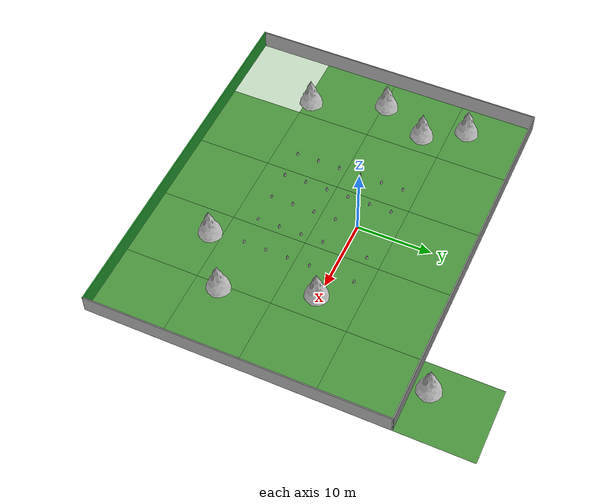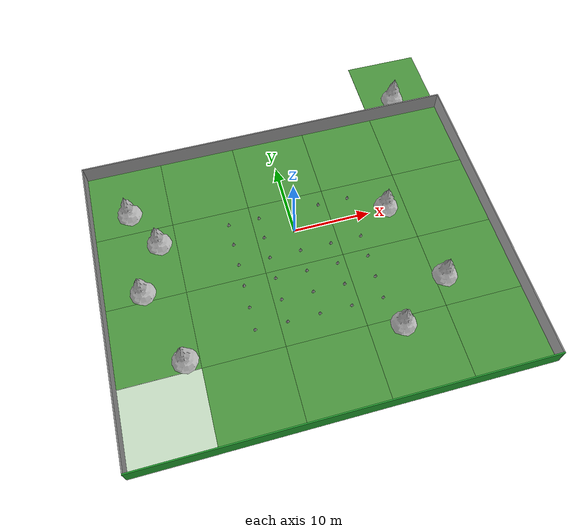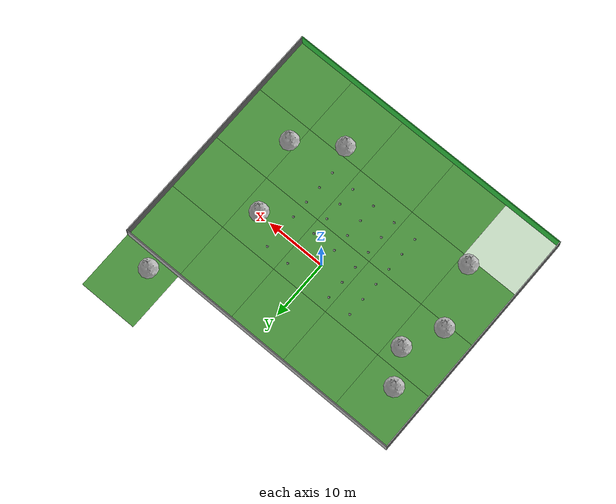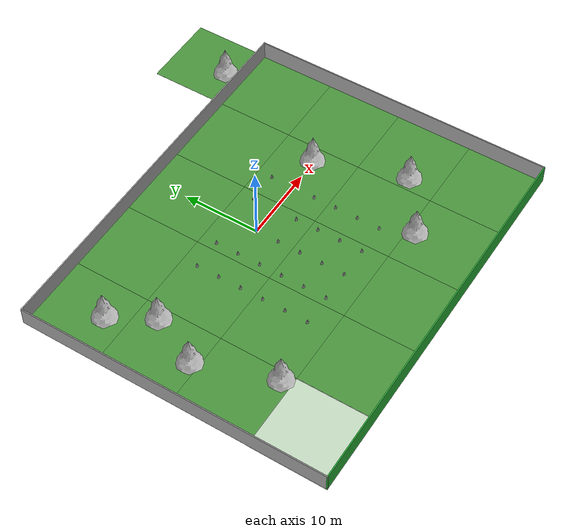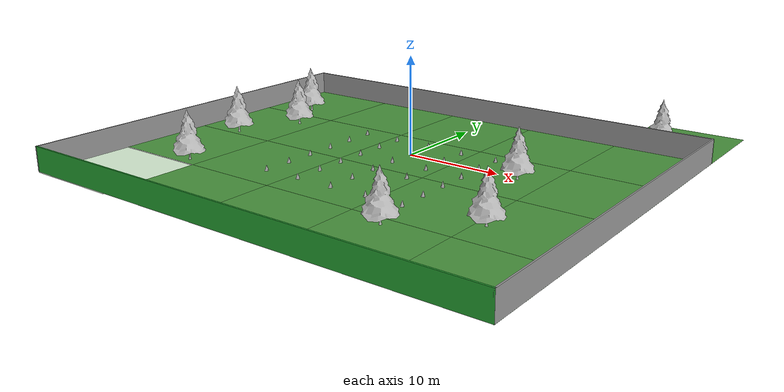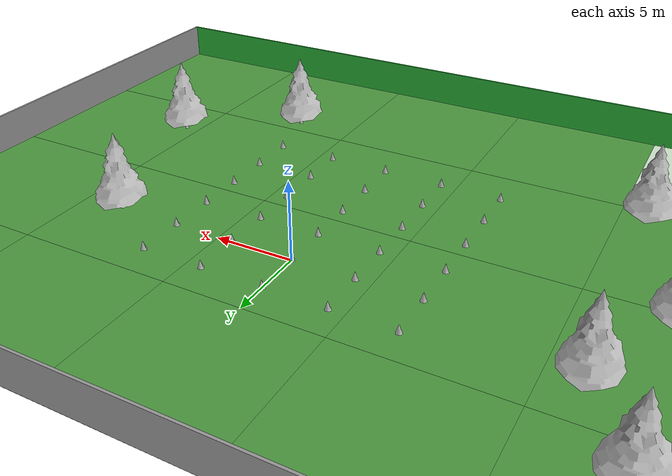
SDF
<?xml version="1.0" ?>
<sdf version="1.5">
  <world name="vrc_task_1">
    <!-- place user camera -->

    <gui>

      <camera name="user_camera">
        <pose>-30 -16 12 0.000000 0.21 0.352194</pose>
      </camera>

    </gui>
    <scene>
       <shadows>0</shadows>
      <grid>false</grid>
      <sky>
        <clouds>
          <speed>10</speed>
        </clouds>
      </sky>
    </scene>
    <physics type="ode">
      <gravity>0 0 -9.81</gravity>
      <ode>
        <solver>
          <use_dynamic_moi_rescaling>true</use_dynamic_moi_rescaling>
          <type>quick</type>
          <iters>50</iters>
	  <!-- Must be 1.0 ! Not any above number -->
          <sor>1.0</sor>
        </solver>
        <constraints>
          <cfm>0.0</cfm>
          <erp>0.2</erp>
          <contact_max_correcting_vel>100.0</contact_max_correcting_vel>
          <contact_surface_layer>0.0</contact_surface_layer>
        </constraints>
      </ode>
      <real_time_update_rate>110</real_time_update_rate>
      <max_step_size>0.0091</max_step_size>
    </physics>

    <!-- Light Source -->
    <light type="directional" name="sun">
      <cast_shadows>0</cast_shadows>
      <pose>0 0 100 0 0 0</pose>
      <diffuse>0.8 0.8 0.8 1</diffuse>
      <specular>0.9 0.9 0.9 1</specular>
      <attenuation>
        <range>1000</range>
        <constant>0.9</constant>
        <linear>0.01</linear>
        <quadratic>0.001</quadratic>
      </attenuation>
      <direction>0.2 0.2 -0.9</direction>
    </light>

    <include>
      <uri>model://grass_plane_small</uri>
    </include>

    <!--Wall-->

    <include>
      <name>wall</name>
      <uri>model://wall</uri>
      <pose> 0 -5 0   0 0 0</pose>
    </include>

	  <!-- Trees -->
    <include>
      <name>pine_tree_1</name>
      <uri>model://pine_tree</uri>
      <pose>9 -16.23 0   0 0 0</pose>
    </include>

 <include>
      <name>pine_tree_2</name>
      <uri>model://pine_tree</uri>
      <pose>-16.599 -13.973 0   0 0 0</pose>
    </include>

 <include>
      <name>pine_tree_3</name>
      <uri>model://pine_tree</uri>
      <pose>-20 -4.28 0   0 0 0</pose>
    </include>

 <include>
      <name>pine_tree_4</name>
      <uri>model://pine_tree</uri>
      <pose>-17 2 0   0 0 0</pose>
    </include>

 <include>
      <name>pine_tree_5</name>
      <uri>model://pine_tree</uri>
      <pose>-20 7.27 0   0 0 0</pose>
    </include>

 <include>
      <name>pine_tree_6</name>
      <uri>model://pine_tree</uri>
      <pose>19 17 0   0 0 0</pose>
    </include>

 <include>
      <name>pine_tree_7</name>
      <uri>model://pine_tree</uri>
      <pose>12.24 -0.15 0   0 0 0</pose>
    </include>

 <include>
      <name>pine_tree_8</name>
      <uri>model://pine_tree</uri>
      <pose>16 -11.5 0   0 0 0</pose>
    </include>

 <!--Small_Trees>-->
<include>
      <name>small_tree_1</name>
      <uri>model://pine_tree</uri>
      <pose>-8 -12 -4.5   0 0 0</pose>
    </include>

<include>
      <name>small_tree_4</name>
      <uri>model://pine_tree</uri>
      <pose>-8 -9 -4.5   0 0 0</pose>
    </include>

<include>
      <name>small_tree_7</name>
      <uri>model://pine_tree</uri>
      <pose>-8 -6 -4.5   0 0 0</pose>
    </include>

<include>
      <name>small_tree_10</name>
      <uri>model://pine_tree</uri>
      <pose>-8 -3 -4.5   0 0 0</pose>
    </include>

<include>
      <name>small_tree_13</name>
      <uri>model://pine_tree</uri>
      <pose>-8 0 -4.5   0 0 0</pose>
    </include>

<include>
      <name>small_tree_16</name>
      <uri>model://pine_tree</uri>
      <pose>-8 3 -4.5   0 0 0</pose>
    </include>

<!--small_trees_2-->>

<include>
      <name>small_tree_1a</name>
      <uri>model://pine_tree</uri>
      <pose>-4 -12 -4.5   0 0 0</pose>
    </include>

<include>
      <name>small_tree_4a</name>
      <uri>model://pine_tree</uri>
      <pose>-4 -9 -4.5   0 0 0</pose>
    </include>

<include>
      <name>small_tree_7a</name>
      <uri>model://pine_tree</uri>
      <pose>-4 -6 -4.5   0 0 0</pose>
    </include>

<include>
      <name>small_tree_10a</name>
      <uri>model://pine_tree</uri>
      <pose>-4 -3 -4.5   0 0 0</pose>
    </include>

<include>
      <name>small_tree_13a</name>
      <uri>model://pine_tree</uri>
      <pose>-4 0 -4.5   0 0 0</pose>
    </include>

<include>
      <name>small_tree_16a</name>
      <uri>model://pine_tree</uri>
      <pose>-4 3 -4.5   0 0 0</pose>
    </include>

<!--small_trees_2-->
<include>
      <name>small_tree_1b</name>
      <uri>model://pine_tree</uri>
      <pose>0 -12 -4.5   0 0 0</pose>
    </include>

<include>
      <name>small_tree_4b</name>
      <uri>model://pine_tree</uri>
      <pose>0 -9 -4.5   0 0 0</pose>
    </include>

<include>
      <name>small_tree_7b</name>
      <uri>model://pine_tree</uri>
      <pose>0 -6 -4.5   0 0 0</pose>
    </include>

<include>
      <name>small_tree_10b</name>
      <uri>model://pine_tree</uri>
      <pose>0 -3 -4.5   0 0 0</pose>
    </include>

<include>
      <name>small_tree_13b</name>
      <uri>model://pine_tree</uri>
      <pose>0 0 -4.5   0 0 0</pose>
    </include>

<include>
      <name>small_tree_16b</name>
      <uri>model://pine_tree</uri>
      <pose>0 3 -4.5   0 0 0</pose>
    </include>

<!--small_trees_3-->
<include>
      <name>small_tree_1c</name>
      <uri>model://pine_tree</uri>
      <pose>4 -12 -4.5   0 0 0</pose>
    </include>

<include>
      <name>small_tree_4c</name>
      <uri>model://pine_tree</uri>
      <pose>4 -9 -4.5   0 0 0</pose>
    </include>

<include>
      <name>small_tree_7c</name>
      <uri>model://pine_tree</uri>
      <pose>4 -6 -4.5   0 0 0</pose>
    </include>

<include>
      <name>small_tree_10c</name>
      <uri>model://pine_tree</uri>
      <pose>4 -3 -4.5   0 0 0</pose>
    </include>

<include>
      <name>small_tree_13c</name>
      <uri>model://pine_tree</uri>
      <pose>4 0 -4.5   0 0 0</pose>
    </include>

<include>
      <name>small_tree_16c</name>
      <uri>model://pine_tree</uri>
      <pose>4 3 -4.5   0 0 0</pose>
    </include>
<!--small-trees_4-->

<include>
      <name>small_tree_1d</name>
      <uri>model://pine_tree</uri>
      <pose>8 -12 -4.5   0 0 0</pose>
    </include>

<include>
      <name>small_tree_4d</name>
      <uri>model://pine_tree</uri>
      <pose>8 -9 -4.5   0 0 0</pose>
    </include>

<include>
      <name>small_tree_7d</name>
      <uri>model://pine_tree</uri>
      <pose>8 -6 -4.5   0 0 0</pose>
    </include>

<include>
      <name>small_tree_10d</name>
      <uri>model://pine_tree</uri>
      <pose>8 -3 -4.5   0 0 0</pose>
    </include>

<include>
      <name>small_tree_13d</name>
      <uri>model://pine_tree</uri>
      <pose>8 0 -4.5   0 0 0</pose>
    </include>

<include>
      <name>small_tree_16d</name>
      <uri>model://pine_tree</uri>
      <pose>8 3 -4.5   0 0 0</pose>
    </include>

 </world>
</sdf>

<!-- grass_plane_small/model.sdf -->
<sdf version='1.4'>
  <model name='grass_plan_small'>
    <static>true</static>
    <link name='link'>
      <collision name='collision'>
        <geometry>
          <plane>
            <normal>0 0 1</normal>
            <size>50 50</size>
          </plane>
        </geometry>
        <surface>
          <friction>
            <ode>
              <mu>0.5</mu>
              <mu2>.5</mu2>
            </ode>
          </friction>
        </surface>
      </collision>

      <visual name='visual_0'>
        <pose>-20 -20 0 0 0 0</pose>

        <cast_shadows>false</cast_shadows>
        <geometry>
          <plane>
            <normal>0 0 1</normal>
            <size>10 10</size>
          </plane>
        </geometry>
        <material>
          <script>
            <uri>model://grass_plane/materials/scripts</uri>
            <uri>model://grass_plane/materials/textures</uri>
            <name>vrc/grass</name>
          </script>
        </material>
      </visual>

      <visual name='visual_1'>
        <pose>-10 -20 0 0 0 0</pose>

        <cast_shadows>false</cast_shadows>
        <geometry>
          <plane>
            <normal>0 0 1</normal>
            <size>10 10</size>
          </plane>
        </geometry>
        <material>
          <script>
            <uri>model://grass_plane/materials/scripts</uri>
            <uri>model://grass_plane/materials/textures</uri>
            <name>vrc/grass</name>
          </script>
        </material>
      </visual>

      <visual name='visual_2'>
        <pose>0 -20 0 0 0 0</pose>

        <cast_shadows>false</cast_shadows>
        <geometry>
          <plane>
            <normal>0 0 1</normal>
            <size>10 10</size>
          </plane>
        </geometry>
        <material>
          <script>
            <uri>model://grass_plane/materials/scripts</uri>
            <uri>model://grass_plane/materials/textures</uri>
            <name>vrc/grass</name>
          </script>
        </material>
      </visual>

      <visual name='visual_3'>
        <pose>10 -20 0 0 0 0</pose>

        <cast_shadows>false</cast_shadows>
        <geometry>
          <plane>
            <normal>0 0 1</normal>
            <size>10 10</size>
          </plane>
        </geometry>
        <material>
          <script>
            <uri>model://grass_plane/materials/scripts</uri>
            <uri>model://grass_plane/materials/textures</uri>
            <name>vrc/grass</name>
          </script>
        </material>
      </visual>

      <visual name='visual_4'>
        <pose>20 -20 0 0 0 0</pose>

        <cast_shadows>false</cast_shadows>
        <geometry>
          <plane>
            <normal>0 0 1</normal>
            <size>10 10</size>
          </plane>
        </geometry>
        <material>
          <script>
            <uri>model://grass_plane/materials/scripts</uri>
            <uri>model://grass_plane/materials/textures</uri>
            <name>vrc/grass</name>
          </script>
        </material>
      </visual>

      <visual name='visual_6'>
        <pose>-20 -10 0 0 0 0</pose>

        <cast_shadows>false</cast_shadows>
        <geometry>
          <plane>
            <normal>0 0 1</normal>
            <size>10 10</size>
          </plane>
        </geometry>
        <material>
          <script>
            <uri>model://grass_plane/materials/scripts</uri>
            <uri>model://grass_plane/materials/textures</uri>
            <name>vrc/grass</name>
          </script>
        </material>
      </visual>

      <visual name='visual_7'>
        <pose>-10 -10 0 0 0 0</pose>

        <cast_shadows>false</cast_shadows>
        <geometry>
          <plane>
            <normal>0 0 1</normal>
            <size>10 10</size>
          </plane>
        </geometry>
        <material>
          <script>
            <uri>model://grass_plane/materials/scripts</uri>
            <uri>model://grass_plane/materials/textures</uri>
            <name>vrc/grass</name>
          </script>
        </material>
      </visual>

      <visual name='visual_8'>
        <pose>0 -10 0 0 0 0</pose>

        <cast_shadows>false</cast_shadows>
        <geometry>
          <plane>
            <normal>0 0 1</normal>
            <size>10 10</size>
          </plane>
        </geometry>
        <material>
          <script>
            <uri>model://grass_plane/materials/scripts</uri>
            <uri>model://grass_plane/materials/textures</uri>
            <name>vrc/grass</name>
          </script>
        </material>
      </visual>

      <visual name='visual_9'>
        <pose>10 -10 0 0 0 0</pose>

        <cast_shadows>false</cast_shadows>
        <geometry>
          <plane>
            <normal>0 0 1</normal>
            <size>10 10</size>
          </plane>
        </geometry>
        <material>
          <script>
            <uri>model://grass_plane/materials/scripts</uri>
            <uri>model://grass_plane/materials/textures</uri>
            <name>vrc/grass</name>
          </script>
        </material>
      </visual>

      <visual name='visual_10'>
        <pose>20 -10 0 0 0 0</pose>

        <cast_shadows>false</cast_shadows>
        <geometry>
          <plane>
            <normal>0 0 1</normal>
            <size>10 10</size>
          </plane>
        </geometry>
        <material>
          <script>
            <uri>model://grass_plane/materials/scripts</uri>
            <uri>model://grass_plane/materials/textures</uri>
            <name>vrc/grass</name>
          </script>
        </material>
      </visual>

      <visual name='visual_13'>
        <pose>-20 0 0 0 0 0</pose>

        <cast_shadows>false</cast_shadows>
        <geometry>
          <plane>
            <normal>0 0 1</normal>
            <size>10 10</size>
          </plane>
        </geometry>
        <material>
          <script>
            <uri>model://grass_plane/materials/scripts</uri>
            <uri>model://grass_plane/materials/textures</uri>
            <name>vrc/grass</name>
          </script>
        </material>
      </visual>

      <visual name='visual_14'>
        <pose>-10 0 0 0 0 0</pose>

        <cast_shadows>false</cast_shadows>
        <geometry>
          <plane>
            <normal>0 0 1</normal>
            <size>10 10</size>
          </plane>
        </geometry>
        <material>
          <script>
            <uri>model://grass_plane/materials/scripts</uri>
            <uri>model://grass_plane/materials/textures</uri>
            <name>vrc/grass</name>
          </script>
        </material>
      </visual>

      <visual name='visual_15'>
        <pose>0 0 0 0 0 0</pose>

        <cast_shadows>false</cast_shadows>
        <geometry>
          <plane>
            <normal>0 0 1</normal>
            <size>10 10</size>
          </plane>
        </geometry>
        <material>
          <script>
            <uri>model://grass_plane/materials/scripts</uri>
            <uri>model://grass_plane/materials/textures</uri>
            <name>vrc/grass</name>
          </script>
        </material>
      </visual>

      <visual name='visual_16'>
        <pose>10 0 0 0 0 0</pose>

        <cast_shadows>false</cast_shadows>
        <geometry>
          <plane>
            <normal>0 0 1</normal>
            <size>10 10</size>
          </plane>
        </geometry>
        <material>
          <script>
            <uri>model://grass_plane/materials/scripts</uri>
            <uri>model://grass_plane/materials/textures</uri>
            <name>vrc/grass</name>
          </script>
        </material>
      </visual>

      <visual name='visual_17'>
        <pose>20 0 0 0 0 0</pose>

        <cast_shadows>false</cast_shadows>
        <geometry>
          <plane>
            <normal>0 0 1</normal>
            <size>10 10</size>
          </plane>
        </geometry>
        <material>
          <script>
            <uri>model://grass_plane/materials/scripts</uri>
            <uri>model://grass_plane/materials/textures</uri>
            <name>vrc/grass</name>
          </script>
        </material>
      </visual>

      <visual name='visual_22'>
        <pose>-20 10 0 0 0 0</pose>

        <cast_shadows>false</cast_shadows>
        <geometry>
          <plane>
            <normal>0 0 1</normal>
            <size>10 10</size>
          </plane>
        </geometry>
        <material>
          <script>
            <uri>model://grass_plane/materials/scripts</uri>
            <uri>model://grass_plane/materials/textures</uri>
            <name>vrc/grass</name>
          </script>
        </material>
      </visual>

      <visual name='visual_23'>
        <pose>-10 10 0 0 0 0</pose>

        <cast_shadows>false</cast_shadows>
        <geometry>
          <plane>
            <normal>0 0 1</normal>
            <size>10 10</size>
          </plane>
        </geometry>
        <material>
          <script>
            <uri>model://grass_plane/materials/scripts</uri>
            <uri>model://grass_plane/materials/textures</uri>
            <name>vrc/grass</name>
          </script>
        </material>
      </visual>

      <visual name='visual_24'>
        <pose>0 10 0 0 0 0</pose>

        <cast_shadows>false</cast_shadows>
        <geometry>
          <plane>
            <normal>0 0 1</normal>
            <size>10 10</size>
          </plane>
        </geometry>
        <material>
          <script>
            <uri>model://grass_plane/materials/scripts</uri>
            <uri>model://grass_plane/materials/textures</uri>
            <name>vrc/grass</name>
          </script>
        </material>
      </visual>

      <visual name='visual_25'>
        <pose>10 10 0 0 0 0</pose>

        <cast_shadows>false</cast_shadows>
        <geometry>
          <plane>
            <normal>0 0 1</normal>
            <size>10 10</size>
          </plane>
        </geometry>
        <material>
          <script>
            <uri>model://grass_plane/materials/scripts</uri>
            <uri>model://grass_plane/materials/textures</uri>
            <name>vrc/grass</name>
          </script>
        </material>
      </visual>

      <visual name='visual_26'>
        <pose>20 10 0 0 0 0</pose>

        <cast_shadows>false</cast_shadows>
        <geometry>
          <plane>
            <normal>0 0 1</normal>
            <size>10 10</size>
          </plane>
        </geometry>
        <material>
          <script>
            <uri>model://grass_plane/materials/scripts</uri>
            <uri>model://grass_plane/materials/textures</uri>
            <name>vrc/grass</name>
          </script>
        </material>
      </visual>

      <visual name='visual_32'>
        <pose>20 20 0 0 0 0</pose>

        <cast_shadows>false</cast_shadows>
        <geometry>
          <plane>
            <normal>0 0 1</normal>
            <size>10 10</size>
          </plane>
        </geometry>
        <material>
          <script>
            <uri>model://grass_plane/materials/scripts</uri>
            <uri>model://grass_plane/materials/textures</uri>
            <name>vrc/grass</name>
          </script>
        </material>
      </visual>
    </link>
  </model>
</sdf>

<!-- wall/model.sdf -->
<sdf version='1.6'>
  <model name='wall'>
    <link name='Wall_2'>
      <pose frame=''>-24.925 0 0 0 -0 1.5708</pose>
      <self_collide>0</self_collide>
      <kinematic>0</kinematic>
      <visual name='Wall_2_Visual'>
        <pose frame=''>0 0 1.25 0 -0 0</pose>
        <geometry>
          <box>
            <size>40 0.15 2.5</size>
          </box>
        </geometry>
        <material>
          <script>
            <uri>file://media/materials/scripts/gazebo.material</uri>
            <name>Gazebo/Grey</name>
          </script>
          <ambient>1 1 1 1</ambient>
          <diffuse>0.7 0.7 0.7 1</diffuse>
          <specular>0.01 0.01 0.01 1</specular>
          <emissive>0 0 0 1</emissive>
        </material>
        <meta>
          <layer>0</layer>
        </meta>
        <transparency>0</transparency>
        <cast_shadows>1</cast_shadows>
      </visual>
      <collision name='Wall_2_Collision'>
        <laser_retro>0</laser_retro>
        <max_contacts>10</max_contacts>
        <pose frame=''>0 0 1.25 0 -0 0</pose>
        <geometry>
          <box>
            <size>40 0.15 2.5</size>
          </box>
        </geometry>
        <surface>
          <friction>
            <ode>
              <mu>1</mu>
              <mu2>1</mu2>
              <fdir1>0 0 0</fdir1>
              <slip1>0</slip1>
              <slip2>0</slip2>
            </ode>
            <torsional>
              <coefficient>1</coefficient>
              <patch_radius>0</patch_radius>
              <surface_radius>0</surface_radius>
              <use_patch_radius>1</use_patch_radius>
              <ode>
                <slip>0</slip>
              </ode>
            </torsional>
          </friction>
          <bounce>
            <restitution_coefficient>0</restitution_coefficient>
            <threshold>1e+06</threshold>
          </bounce>
          <contact>
            <collide_without_contact>0</collide_without_contact>
            <collide_without_contact_bitmask>1</collide_without_contact_bitmask>
            <collide_bitmask>1</collide_bitmask>
            <ode>
              <soft_cfm>0</soft_cfm>
              <soft_erp>0.2</soft_erp>
              <kp>1e+13</kp>
              <kd>1</kd>
              <max_vel>0.01</max_vel>
              <min_depth>0</min_depth>
            </ode>
            <bullet>
              <split_impulse>1</split_impulse>
              <split_impulse_penetration_threshold>-0.01</split_impulse_penetration_threshold>
              <soft_cfm>0</soft_cfm>
              <soft_erp>0.2</soft_erp>
              <kp>1e+13</kp>
              <kd>1</kd>
            </bullet>
          </contact>
        </surface>
      </collision>
    </link>
    <link name='Wall_4'>
      <pose frame=''>-1e-06 -19.925 0 0 -0 0</pose>
      <self_collide>0</self_collide>
      <kinematic>0</kinematic>
      <gravity>1</gravity>
      <inertial>
        <mass>1</mass>
        <pose frame=''>0 0 0 0 -0 0</pose>
        <inertia>
          <ixx>1</ixx>
          <ixy>0</ixy>
          <ixz>0</ixz>
          <iyy>1</iyy>
          <iyz>0</iyz>
          <izz>1</izz>
        </inertia>
      </inertial>
      <visual name='Wall_4_Visual'>
        <pose frame=''>0 0 1.25 0 -0 0</pose>
        <geometry>
          <box>
            <size>50 0.15 2.5</size>
          </box>
        </geometry>
        <material>
          <script>
            <uri>file://media/materials/scripts/gazebo.material</uri>
            <name>Gazebo/Green</name>
          </script>
          <ambient>1 1 1 1</ambient>
          <diffuse>0.7 0.7 0.7 1</diffuse>
          <specular>0.01 0.01 0.01 1</specular>
          <emissive>0 0 0 1</emissive>
          <shader type='vertex'>
            <normal_map>__default__</normal_map>
          </shader>
        </material>
        <meta>
          <layer>0</layer>
        </meta>
        <transparency>0</transparency>
        <cast_shadows>1</cast_shadows>
      </visual>
      <collision name='Wall_4_Collision'>
        <laser_retro>0</laser_retro>
        <max_contacts>10</max_contacts>
        <pose frame=''>0 0 1.25 0 -0 0</pose>
        <geometry>
          <box>
            <size>50 0.15 2.5</size>
          </box>
        </geometry>
        <surface>
          <friction>
            <ode>
              <mu>1</mu>
              <mu2>1</mu2>
              <fdir1>0 0 0</fdir1>
              <slip1>0</slip1>
              <slip2>0</slip2>
            </ode>
            <torsional>
              <coefficient>1</coefficient>
              <patch_radius>0</patch_radius>
              <surface_radius>0</surface_radius>
              <use_patch_radius>1</use_patch_radius>
              <ode>
                <slip>0</slip>
              </ode>
            </torsional>
          </friction>
          <bounce>
            <restitution_coefficient>0</restitution_coefficient>
            <threshold>1e+06</threshold>
          </bounce>
          <contact>
            <collide_without_contact>0</collide_without_contact>
            <collide_without_contact_bitmask>1</collide_without_contact_bitmask>
            <collide_bitmask>1</collide_bitmask>
            <ode>
              <soft_cfm>0</soft_cfm>
              <soft_erp>0.2</soft_erp>
              <kp>1e+13</kp>
              <kd>1</kd>
              <max_vel>0.01</max_vel>
              <min_depth>0</min_depth>
            </ode>
            <bullet>
              <split_impulse>1</split_impulse>
              <split_impulse_penetration_threshold>-0.01</split_impulse_penetration_threshold>
              <soft_cfm>0</soft_cfm>
              <soft_erp>0.2</soft_erp>
              <kp>1e+13</kp>
              <kd>1</kd>
            </bullet>
          </contact>
        </surface>
      </collision>
    </link>
    <link name='Wall_5'>
      <pose frame=''>24.925 0 0 0 -0 1.5708</pose>
      <self_collide>0</self_collide>
      <kinematic>0</kinematic>
      <visual name='Wall_5_Visual'>
        <pose frame=''>0 0 1.25 0 -0 0</pose>
        <geometry>
          <box>
            <size>40 0.15 2.5</size>
          </box>
        </geometry>
        <material>
          <script>
            <uri>file://media/materials/scripts/gazebo.material</uri>
            <name>Gazebo/Grey</name>
          </script>
          <ambient>1 1 1 1</ambient>
          <diffuse>0.7 0.7 0.7 1</diffuse>
          <specular>0.01 0.01 0.01 1</specular>
          <emissive>0 0 0 1</emissive>
        </material>
        <meta>
          <layer>0</layer>
        </meta>
        <transparency>0</transparency>
        <cast_shadows>1</cast_shadows>
      </visual>
      <collision name='Wall_5_Collision'>
        <laser_retro>0</laser_retro>
        <max_contacts>10</max_contacts>
        <pose frame=''>0 0 1.25 0 -0 0</pose>
        <geometry>
          <box>
            <size>40 0.15 2.5</size>
          </box>
        </geometry>
        <surface>
          <friction>
            <ode>
              <mu>1</mu>
              <mu2>1</mu2>
              <fdir1>0 0 0</fdir1>
              <slip1>0</slip1>
              <slip2>0</slip2>
            </ode>
            <torsional>
              <coefficient>1</coefficient>
              <patch_radius>0</patch_radius>
              <surface_radius>0</surface_radius>
              <use_patch_radius>1</use_patch_radius>
              <ode>
                <slip>0</slip>
              </ode>
            </torsional>
          </friction>
          <bounce>
            <restitution_coefficient>0</restitution_coefficient>
            <threshold>1e+06</threshold>
          </bounce>
          <contact>
            <collide_without_contact>0</collide_without_contact>
            <collide_without_contact_bitmask>1</collide_without_contact_bitmask>
            <collide_bitmask>1</collide_bitmask>
            <ode>
              <soft_cfm>0</soft_cfm>
              <soft_erp>0.2</soft_erp>
              <kp>1e+13</kp>
              <kd>1</kd>
              <max_vel>0.01</max_vel>
              <min_depth>0</min_depth>
            </ode>
            <bullet>
              <split_impulse>1</split_impulse>
              <split_impulse_penetration_threshold>-0.01</split_impulse_penetration_threshold>
              <soft_cfm>0</soft_cfm>
              <soft_erp>0.2</soft_erp>
              <kp>1e+13</kp>
              <kd>1</kd>
            </bullet>
          </contact>
        </surface>
      </collision>
    </link>
    <link name='Wall_7'>
      <pose frame=''>-1e-06 19.925 0 0 -0 3.14159</pose>
      <self_collide>0</self_collide>
      <kinematic>0</kinematic>
      <visual name='Wall_7_Visual'>
        <pose frame=''>0 0 1.25 0 -0 0</pose>
        <geometry>
          <box>
            <size>50 0.15 2.5</size>
          </box>
        </geometry>
        <material>
          <script>
            <uri>file://media/materials/scripts/gazebo.material</uri>
            <name>Gazebo/Grey</name>
          </script>
          <ambient>1 1 1 1</ambient>
          <diffuse>0.7 0.7 0.7 1</diffuse>
          <specular>0.01 0.01 0.01 1</specular>
          <emissive>0 0 0 1</emissive>
        </material>
        <meta>
          <layer>0</layer>
        </meta>
        <transparency>0</transparency>
        <cast_shadows>1</cast_shadows>
      </visual>
      <collision name='Wall_7_Collision'>
        <laser_retro>0</laser_retro>
        <max_contacts>10</max_contacts>
        <pose frame=''>0 0 1.25 0 -0 0</pose>
        <geometry>
          <box>
            <size>50 0.15 2.5</size>
          </box>
        </geometry>
        <surface>
          <friction>
            <ode>
              <mu>1</mu>
              <mu2>1</mu2>
              <fdir1>0 0 0</fdir1>
              <slip1>0</slip1>
              <slip2>0</slip2>
            </ode>
            <torsional>
              <coefficient>1</coefficient>
              <patch_radius>0</patch_radius>
              <surface_radius>0</surface_radius>
              <use_patch_radius>1</use_patch_radius>
              <ode>
                <slip>0</slip>
              </ode>
            </torsional>
          </friction>
          <bounce>
            <restitution_coefficient>0</restitution_coefficient>
            <threshold>1e+06</threshold>
          </bounce>
          <contact>
            <collide_without_contact>0</collide_without_contact>
            <collide_without_contact_bitmask>1</collide_without_contact_bitmask>
            <collide_bitmask>1</collide_bitmask>
            <ode>
              <soft_cfm>0</soft_cfm>
              <soft_erp>0.2</soft_erp>
              <kp>1e+13</kp>
              <kd>1</kd>
              <max_vel>0.01</max_vel>
              <min_depth>0</min_depth>
            </ode>
            <bullet>
              <split_impulse>1</split_impulse>
              <split_impulse_penetration_threshold>-0.01</split_impulse_penetration_threshold>
              <soft_cfm>0</soft_cfm>
              <soft_erp>0.2</soft_erp>
              <kp>1e+13</kp>
              <kd>1</kd>
            </bullet>
          </contact>
        </surface>
      </collision>
    </link>
    <static>1</static>
    <allow_auto_disable>1</allow_auto_disable>
  </model>
</sdf>

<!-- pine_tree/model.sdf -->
<sdf version="1.6">
  <model name="pine_tree">
    <static>true</static>
    <link name="link">
      <collision name="collision">
        <geometry>
          <mesh>
            <uri>file://isr-testbed/pine_tree/meshes/pine_tree.dae</uri>
          </mesh>
        </geometry>
      </collision>
      <visual name="branch">
        <geometry>
          <mesh>
            <uri>file://isr-testbed/pine_tree/meshes/pine_tree.dae</uri>
            <submesh>
              <name>Branch</name>
            </submesh>
          </mesh>
        </geometry>
        <material>
          <script>
            <uri>file://isr-testbed/pine_tree/materials/scripts/</uri>
            <uri>file://isr-testbed/pine_tree/materials/textures/</uri>
            <name>PineTree/Branch</name>
          </script>
        </material>
      </visual>
      <visual name="bark">
        <geometry>
          <mesh>
            <uri>file://isr-testbed/pine_tree/meshes/pine_tree.dae</uri>
            <submesh>
              <name>Bark</name>
            </submesh>
          </mesh>
        </geometry>
        <material>
          <script>
            <uri>file://isr-testbed/pine_tree/materials/scripts/</uri>
            <uri>file://isr-testbed/pine_tree/materials/textures/</uri>
            <name>PineTree/Bark</name>
          </script>
        </material>
      </visual>
    </link>
  </model>
</sdf>
